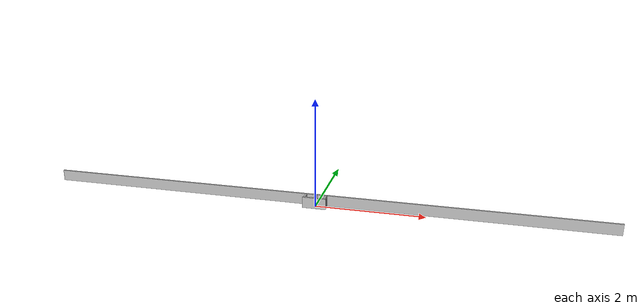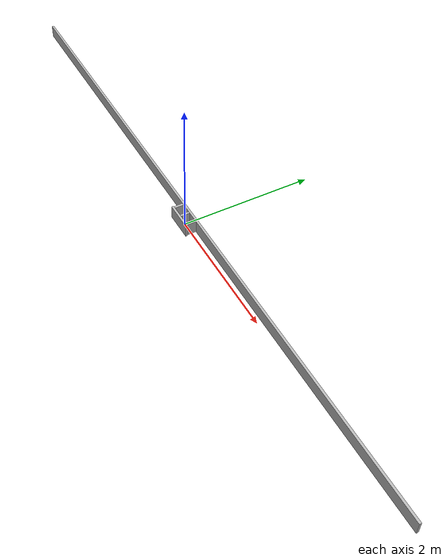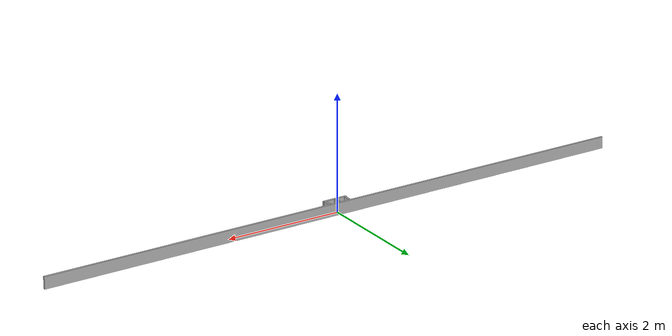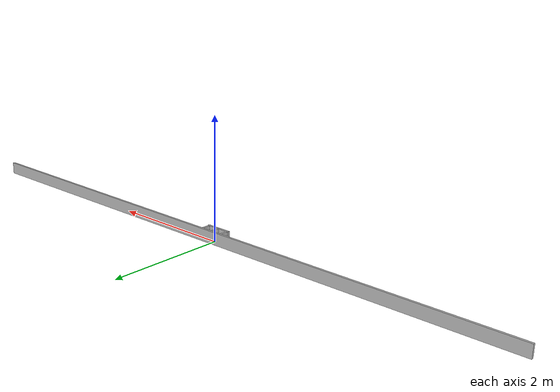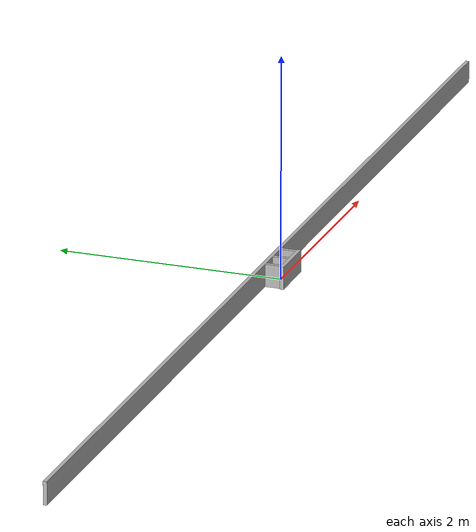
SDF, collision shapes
<?xml version="1.0"?>
<sdf version="1.4">
<model name='cinder_block'>
      <link name='link'>
        <inertial>
          <pose>0 0 0.1016 0 -0 0</pose>
          <mass>5</mass>
          <inertia>
            <ixx>0.028705</ixx>
            <ixy>0</ixy>
            <iyy>0.073708</iyy>
            <ixz>0</ixz>
            <iyz>0</iyz>
            <izz>0.06908</izz>
          </inertia>
        </inertial>
        <visual name='visual'>
          <geometry>
            <mesh>
              <uri>model://cinder_block/meshes/cinder_block.dae</uri>
            </mesh>
          </geometry>
        </visual>
        <collision name='left'>
          <pose>0 -0.08465 0.1016 0 -0 0</pose>
          <geometry>
            <box>
              <size>0.43495 0.0339 0.2032</size>
            </box>
          </geometry>
          <surface>
            <contact>
              <ode>
                <max_vel>0.1</max_vel>
                <min_depth>0.001</min_depth>
              </ode>
            </contact>
            <bounce/>
            <friction>
              <ode/>
            </friction>
          </surface>
          <max_contacts>10</max_contacts>
        </collision>
        <collision name='right'>
          <pose>0 0.08465 0.1016 0 -0 0</pose>
          <geometry>
            <box>
              <size>10.43495 0.0339 0.2032</size>
            </box>
          </geometry>
          <surface>
            <contact>
              <ode>
                <max_vel>0.1</max_vel>
                <min_depth>0.001</min_depth>
              </ode>
            </contact>
            <bounce/>
            <friction>
              <ode/>
            </friction>
          </surface>
          <max_contacts>10</max_contacts>
        </collision>
        <collision name='front'>
          <pose>0.18625 0 0.1016 0 -0 0</pose>
          <geometry>
            <box>
              <size>0.0339 0.1354 0.203</size>
            </box>
          </geometry>
          <surface>
            <contact>
              <ode>
                <max_vel>0.1</max_vel>
                <min_depth>0.001</min_depth>
              </ode>
            </contact>
            <bounce/>
            <friction>
              <ode/>
            </friction>
          </surface>
          <max_contacts>10</max_contacts>
        </collision>
        <collision name='middle'>
          <pose>0 0 0.1016 0 -0 0</pose>
          <geometry>
            <box>
              <size>0.0339 0.1354 0.203</size>
            </box>
          </geometry>
          <surface>
            <contact>
              <ode>
                <max_vel>0.1</max_vel>
                <min_depth>0.001</min_depth>
              </ode>
            </contact>
            <bounce/>
            <friction>
              <ode/>
            </friction>
          </surface>
          <max_contacts>10</max_contacts>
        </collision>
        <collision name='back'>
          <pose>-0.18625 0 0.1016 0 -0 0</pose>
          <geometry>
            <box>
              <size>0.0339 0.1354 0.203</size>
            </box>
          </geometry>
          <surface>
            <contact>
              <ode>
                <max_vel>0.1</max_vel>
                <min_depth>0.001</min_depth>
              </ode>
            </contact>
            <bounce/>
            <friction>
              <ode/>
            </friction>
          </surface>
          <max_contacts>10</max_contacts>
        </collision>
        <velocity_decay>
          <linear>0</linear>
          <angular>0</angular>
        </velocity_decay>
        <self_collide>0</self_collide>
        <kinematic>0</kinematic>
        <gravity>1</gravity>
      </link>
      <pose>0 0 0 0 -0 0</pose>
      <static>0</static>
    </model>
</sdf>
